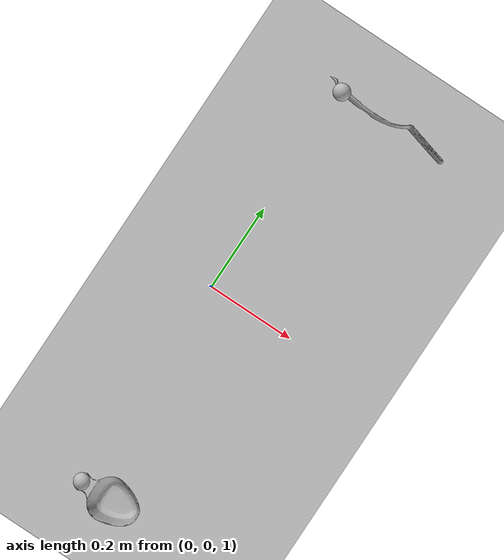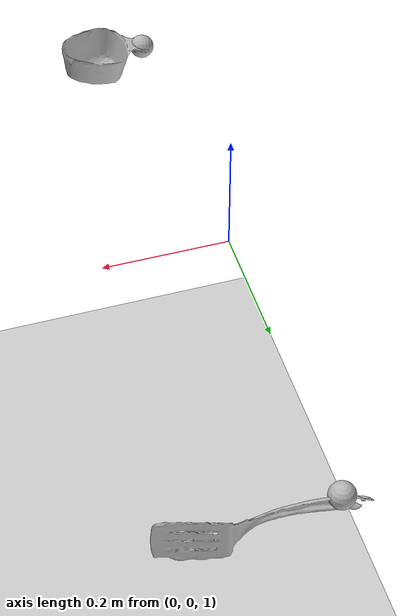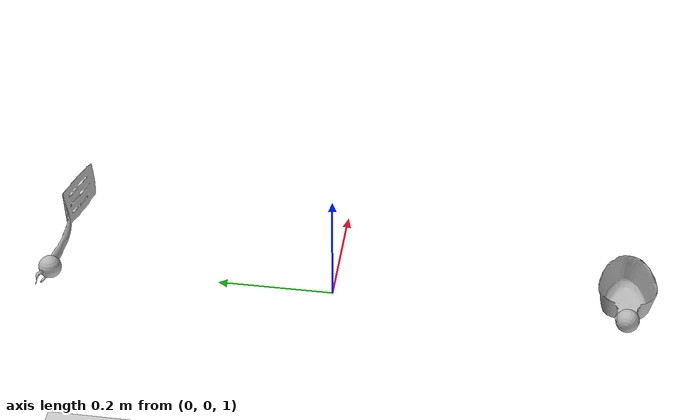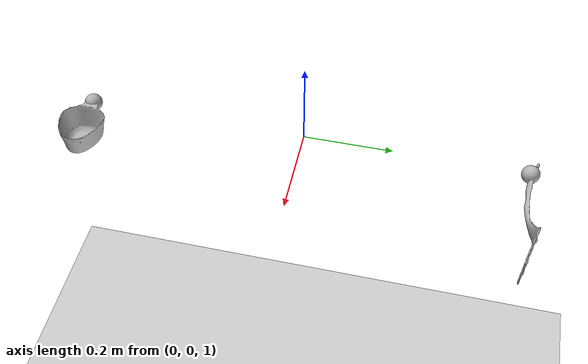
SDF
<sdf version="1.6">
 <world name="b_wildo_bowl_b_spatula_v">
  <include><uri>model://sun</uri></include>
  <include><uri>model://ground_plane</uri></include>
  <include>
   <uri>model://b_spatula</uri>
   <pose>0.146581 0.505236 0.992013 1.576128 -0.007193 -3.141592</pose>
  </include>
  <plugin name="grains_factory" filename="libGrainsFactoryPlugin.so">
   <pose>0.078818 -0.501749 0.988186 0 0 0</pose>
   <mass>0.001</mass>
   <radius>0.015</radius>
   <quantity>100</quantity>
   <friction>0.4</friction>
   <friction2>0.4</friction2>
   <velocity_decay>0.3</velocity_decay>
  </plugin>
  <include><uri>model://b_wildo_bowl</uri><pose>0.078818 -0.501749 0.988186 3.097035 0 0</pose></include>
  <include>
   <uri>model://gripper</uri>
   <name>left_ee</name>
   <pose>0 0.5 1 0 0 0</pose>
   <plugin name="l_force_controller" filename="libvelocity_controller_plugin.so">
    <linkName>link</linkName>
    <topicName>set_l_ee_twist</topicName>
    <gains>
     <linear><P>100.0</P><I>0.0</I><D>25.0</D></linear>
     <angular><P>100.0</P><I>0.0</I><D>25.0</D></angular>
    </gains>
   </plugin>
   <plugin name="l_grip" filename="libGripPlugin.so">
    <parentLinkName>link</parentLinkName>
    <childLinkName>b_spatula::link</childLinkName>
    <relativePose>0.146581 0.005236 -0.007987 1.57613 -0.007193 -3.14159</relativePose>
   </plugin>
   <plugin name="l_tf_broadcaster" filename="libtf_broadcaster_plugin.so">
    <linkName>link</linkName>
    <frameName>l_gripper_tool_frame</frameName>
   </plugin>
  </include>
  <include>
   <uri>model://gripper</uri>
   <name>right_ee</name>
   <pose>0 -0.5 1 1.547368 1.402341 1.343703</pose>
   <plugin name="r_force_controller" filename="libvelocity_controller_plugin.so">
    <linkName>link</linkName>
    <topicName>set_r_ee_twist</topicName>
    <gains>
     <linear><P>100.0</P><I>0.0</I><D>25.0</D></linear>
     <angular><P>100.0</P><I>0.0</I><D>25.0</D></angular>
    </gains>
   </plugin>
   <plugin name="r_grip" filename="libGripPlugin.so">
    <parentLinkName>link</parentLinkName>
    <childLinkName>b_wildo_bowl::link</childLinkName>
    <relativePose>0.0089419 0.0135799 0.0780419 1.55636 1.32285 -1.41637</relativePose>
   </plugin>
   <plugin name="r_tf_broadcaster" filename="libtf_broadcaster_plugin.so">
    <linkName>link</linkName>
    <frameName>r_gripper_tool_frame</frameName>
   </plugin>
  </include>
  <plugin name="feature_visualization_plugin" filename="libgiskard_visualization_plugin.so"/>
 </world>
</sdf>

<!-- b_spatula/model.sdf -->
<sdf version='1.6'>
	<model name='b_spatula'>
		<static>false</static>
		<pose>0 0 0 0 0 0</pose>

		<link name='link'>
			<inertial>
			<mass>0.11</mass>
			<pose>0.00088072 -6.5132e-05 0.00086388 0 0 0</pose>
				<inertia>
					<ixx>8.1404e-07</ixx>
					<ixy>0</ixy>
					<ixz>0</ixz>
					<iyy>1.1521e-06</iyy>
					<iyz>0</iyz>
					<izz>5.3661e-07</izz>
				</inertia>
			</inertial>

			<sensor name="tool_contact_sensor" type="contact">
				<always_on>true</always_on>
				<update_rate>30.0</update_rate>
				<contact>
					<collision>collision</collision>
				</contact>
				<plugin name="tool_bumper" filename="libgazebo_ros_bumper.so">
					<bumperTopicName>tool_contact_sensor_state</bumperTopicName>
					<frameName>world</frameName>
				</plugin>
			</sensor>

			<collision name='collision'>
				<geometry>
					<mesh>
						<uri>model://b_spatula/b_spatula.dae</uri>
					</mesh>
				</geometry>
				<surface>
					<friction>
						<ode>
							<mu>0.2</mu>
							<mu2>0.2</mu2>
						</ode>
					</friction>
				</surface>
			</collision>
			<visual name='visual'>
				<geometry>
					<mesh>
						<uri>model://b_spatula/b_spatula.dae</uri>
					</mesh>
				</geometry>
			</visual>
		</link>
	</model>
</sdf>

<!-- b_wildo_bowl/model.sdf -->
<sdf version='1.6'>
    <model name='b_wildo_bowl'>
        <static>false</static>
        <pose>0 0 0 0 0 0</pose>

        <link name='link'>
            <inertial>
                <mass>0.40</mass>
                <pose>0.000382297035518770	-0.000149204207528814	0.00495379249275721 0 0 0</pose>
                <inertia>
                    <ixx>7.972462473661376e-05</ixx>
                    <ixy>0.0</ixy>
                    <ixz>0.0</ixz>
                    <iyy>9.743942735555959e-05</iyy>
                    <iyz>0.0</iyz>
                    <izz>3.897022921041362e-05</izz>
                </inertia>
            </inertial>

            <collision name='collision'>
                <geometry>
                    <mesh>
                        <uri>model://b_wildo_bowl/b_wildo_bowl.dae</uri>
                    </mesh>
                </geometry>
                <surface>
                    <friction>
                        <ode>
                            <mu>0.2</mu>
                            <mu2>0.2</mu2>
                        </ode>
                    </friction>
                </surface>
            </collision>
            <visual name='visual'>
                <geometry>
                    <mesh>
                        <uri>model://b_wildo_bowl/b_wildo_bowl.dae</uri>
                    </mesh>
                </geometry>
            </visual>
        </link>
    </model>
</sdf>

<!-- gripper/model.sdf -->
<sdf version='1.6'>
    <model name='gripper'>
        <static>false</static>
        <allow_auto_disable>false</allow_auto_disable>

        <pose>0 0 0 0 0 0</pose>

        <link name='link'>
            <pose>0 0 0 0 0 0</pose>

            <gravity>false</gravity>

            <visual name='visual'>
                <geometry>
                    <sphere>
                        <radius>0.02</radius>
                    </sphere>
                </geometry>
            </visual>

        </link>
    </model>
</sdf>
